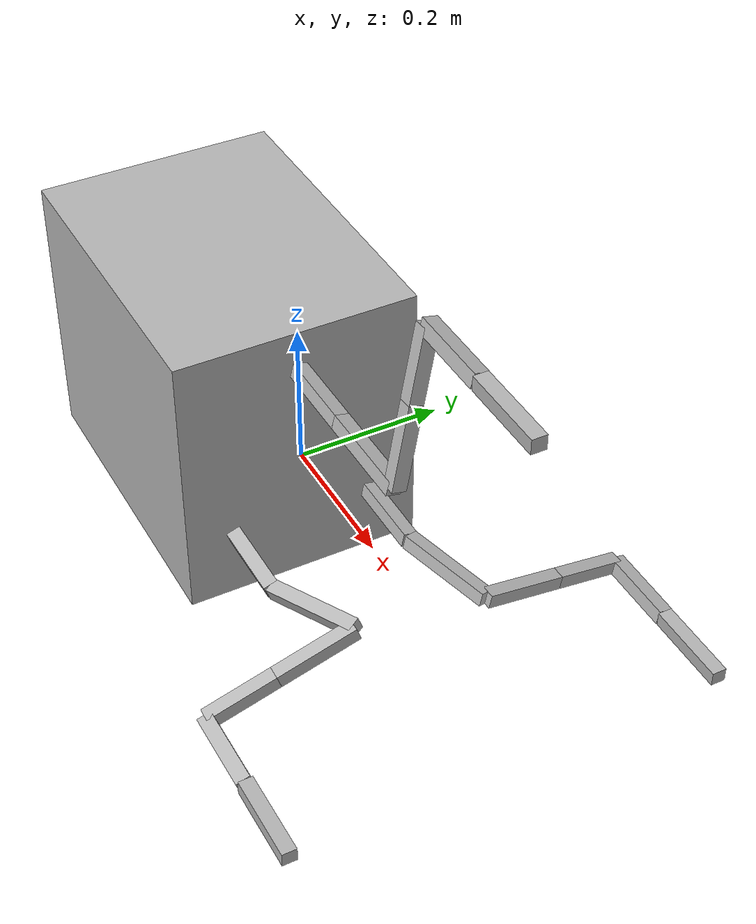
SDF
<?xml version="1.0" ?>
<sdf version="1.5">
<model name="four_bar_sdf">
<pose>0 0 0 0 0 0</pose>
<self_collide>true</self_collide>
<link name="linkROV">
<pose>-0.2286 0 0 0 0 0</pose>
<inertial>
<mass>1.0</mass>
<inertia>
<ixx>0.0227</ixx>
<iyy>0.0306</iyy>
<izz>0.0269</izz>
<ixy>0.0</ixy>
<ixz>0.0</ixz>
<iyz>0.0</iyz>
</inertia>
</inertial>
<collision name="linkROV_collision">
<geometry>
<box>
<size>0.4572 0.33805 0.39785</size>
</box>
</geometry>
</collision>
<visual name="linkROV_visual">
<geometry>
<box>
<size>0.4572 0.33805 0.39785</size>
</box>
</geometry>
<material>
<color rgba="0.3 0.3 0.3 1.0"/>
</material>
</visual>
</link>
<link name="arm1link1">
<pose>0.05750000 0.10000000 -0.10000000 -0.19710048 -0.00000000 0.00000000 </pose>
<inertial>
<mass>0.575</mass>
<inertia>
<ixx>3.8333e-05</ixx>
<iyy>6.5286e-04</iyy>
<izz>6.5286e-04</izz>
<ixy>0.0</ixy>
<ixz>0.0</ixz>
<iyz>0.0</iyz>
</inertia>
</inertial>
<collision name="arm1link1_collision">
<geometry>
<box>
<size>0.115 0.02 0.02</size>
</box>
</geometry>
</collision>
<visual name="arm1link1_visual">
<geometry>
<box>
<size>0.115 0.02 0.02</size>
</box>
</geometry>
<material>
<color rgba="0.3 0.3 0.3 1.0"/>
</material>
</visual>
</link>
<link name="arm1link2">
<pose>0.18208900 0.11958986 -0.10391196 -0.18910197 0.05591430 0.28409960 </pose>
<inertial>
<mass>0.700</mass>
<inertia>
<ixx>4.6667e-05</ixx>
<iyy>1.1667e-03</iyy>
<izz>1.1667e-03</izz>
<ixy>0.0</ixy>
<ixz>0.0</ixz>
<iyz>0.0</iyz>
</inertia>
</inertial>
<collision name="arm1link2_collision">
<geometry>
<box>
<size>0.140 0.02 0.02</size>
</box>
</geometry>
</collision>
<visual name="arm1link2_visual">
<geometry>
<box>
<size>0.140 0.02 0.02</size>
</box>
</geometry>
<material>
<color rgba="0.3 0.3 0.3 1.0"/>
</material>
</visual>
</link>
<link name="arm1link3">
<pose>0.24573851 0.19546547 -0.11906380 0.01194450 0.19674291 1.63182800 </pose>
<inertial>
<mass>0.575</mass>
<inertia>
<ixx>3.8333e-05</ixx>
<iyy>6.5286e-04</iyy>
<izz>6.5286e-04</izz>
<ixy>0.0</ixy>
<ixz>0.0</ixz>
<iyz>0.0</iyz>
</inertia>
</inertial>
<collision name="arm1link3_collision">
<geometry>
<box>
<size>0.115 0.02 0.02</size>
</box>
</geometry>
</collision>
<visual name="arm1link3_visual">
<geometry>
<box>
<size>0.115 0.02 0.02</size>
</box>
</geometry>
<material>
<color rgba="0.3 0.3 0.3 1.0"/>
</material>
</visual>
</link>
<link name="arm1link4">
<pose>0.23930817 0.30069535 -0.14007748 0.01247686 0.19674291 1.63182800 </pose>
<inertial>
<mass>0.500</mass>
<inertia>
<ixx>3.3333e-05</ixx>
<iyy>4.3333e-04</iyy>
<izz>4.3333e-04</izz>
<ixy>0.0</ixy>
<ixz>0.0</ixz>
<iyz>0.0</iyz>
</inertia>
</inertial>
<collision name="arm1link4_collision">
<geometry>
<box>
<size>0.100 0.02 0.02</size>
</box>
</geometry>
</collision>
<visual name="arm1link4_visual">
<geometry>
<box>
<size>0.100 0.02 0.02</size>
</box>
</geometry>
<material>
<color rgba="0.3 0.3 0.3 1.0"/>
</material>
</visual>
</link>
<link name="arm1link5">
<pose>0.29381730 0.34965661 -0.14988587 -0.19713213 0.00060144 0.00029808 </pose>
<inertial>
<mass>0.575</mass>
<inertia>
<ixx>3.8333e-05</ixx>
<iyy>6.5286e-04</iyy>
<izz>6.5286e-04</izz>
<ixy>0.0</ixy>
<ixz>0.0</ixz>
<iyz>0.0</iyz>
</inertia>
</inertial>
<collision name="arm1link5_collision">
<geometry>
<box>
<size>0.115 0.02 0.02</size>
</box>
</geometry>
</collision>
<visual name="arm1link5_visual">
<geometry>
<box>
<size>0.115 0.02 0.02</size>
</box>
</geometry>
<material>
<color rgba="0.3 0.3 0.3 1.0"/>
</material>
</visual>
</link>
<link name="arm1link6">
<pose>0.41131727 0.34969164 -0.14995654 -0.00027824 0.00060144 0.00029808 </pose>
<inertial>
<mass>0.600</mass>
<inertia>
<ixx>4.0000e-05</ixx>
<iyy>7.4000e-04</iyy>
<izz>7.4000e-04</izz>
<ixy>0.0</ixy>
<ixz>0.0</ixz>
<iyz>0.0</iyz>
</inertia>
</inertial>
<collision name="arm1link6_collision">
<geometry>
<box>
<size>0.120 0.02 0.02</size>
</box>
</geometry>
</collision>
<visual name="arm1link6_visual">
<geometry>
<box>
<size>0.120 0.02 0.02</size>
</box>
</geometry>
<material>
<color rgba="0.3 0.3 0.3 1.0"/>
</material>
</visual>
</link>
<link name="arm2link1">
<pose>0.05750000 -0.10000000 -0.10000000 -2.81770000 0.00000000 0.00000000 </pose>
<inertial>
<mass>0.575</mass>
<inertia>
<ixx>3.8333e-05</ixx>
<iyy>6.5286e-04</iyy>
<izz>6.5286e-04</izz>
<ixy>0.0</ixy>
<ixz>0.0</ixz>
<iyz>0.0</iyz>
</inertia>
</inertial>
<collision name="arm2link1_collision">
<geometry>
<box>
<size>0.115 0.02 0.02</size>
</box>
</geometry>
</collision>
<visual name="arm2link1_visual">
<geometry>
<box>
<size>0.115 0.02 0.02</size>
</box>
</geometry>
<material>
<color rgba="0.3 0.3 0.3 1.0"/>
</material>
</visual>
</link>
<link name="arm2link2">
<pose>0.17897000 -0.07305400 -0.09095500 -2.84400000 -0.12958000 0.39868000 </pose>
<inertial>
<mass>0.700</mass>
<inertia>
<ixx>4.6667e-05</ixx>
<iyy>1.1667e-03</iyy>
<izz>1.1667e-03</izz>
<ixy>0.0</ixy>
<ixz>0.0</ixz>
<iyz>0.0</iyz>
</inertia>
</inertial>
<collision name="arm2link2_collision">
<geometry>
<box>
<size>0.140 0.02 0.02</size>
</box>
</geometry>
</collision>
<visual name="arm2link2_visual">
<geometry>
<box>
<size>0.140 0.02 0.02</size>
</box>
</geometry>
<material>
<color rgba="0.3 0.3 0.3 1.0"/>
</material>
</visual>
</link>
<link name="arm2link3">
<pose>0.24104000 -0.10059000 -0.10020000 3.13050000 0.32367000 -1.60560000 </pose>
<inertial>
<mass>0.575</mass>
<inertia>
<ixx>3.8333e-05</ixx>
<iyy>6.5286e-04</iyy>
<izz>6.5286e-04</izz>
<ixy>0.0</ixy>
<ixz>0.0</ixz>
<iyz>0.0</iyz>
</inertia>
</inertial>
<collision name="arm2link3_collision">
<geometry>
<box>
<size>0.115 0.02 0.02</size>
</box>
</geometry>
</collision>
<visual name="arm2link3_visual">
<geometry>
<box>
<size>0.115 0.02 0.02</size>
</box>
</geometry>
<material>
<color rgba="0.3 0.3 0.3 1.0"/>
</material>
</visual>
</link>
<link name="arm2link4">
<pose>0.23749000 -0.20244000 -0.13439000 3.13060000 0.32367000 -1.60560000 </pose>
<inertial>
<mass>0.500</mass>
<inertia>
<ixx>3.3333e-05</ixx>
<iyy>4.3333e-04</iyy>
<izz>4.3333e-04</izz>
<ixy>0.0</ixy>
<ixz>0.0</ixz>
<iyz>0.0</iyz>
</inertia>
</inertial>
<collision name="arm2link4_collision">
<geometry>
<box>
<size>0.100 0.02 0.02</size>
</box>
</geometry>
</collision>
<visual name="arm2link4_visual">
<geometry>
<box>
<size>0.100 0.02 0.02</size>
</box>
</geometry>
<material>
<color rgba="0.3 0.3 0.3 1.0"/>
</material>
</visual>
</link>
<link name="arm2link5">
<pose>0.29334000 -0.24980000 -0.15028000 -2.81770000 -0.00023771 0.00028540 </pose>
<inertial>
<mass>0.575</mass>
<inertia>
<ixx>3.8333e-05</ixx>
<iyy>6.5286e-04</iyy>
<izz>6.5286e-04</izz>
<ixy>0.0</ixy>
<ixz>0.0</ixz>
<iyz>0.0</iyz>
</inertia>
</inertial>
<collision name="arm2link5_collision">
<geometry>
<box>
<size>0.115 0.02 0.02</size>
</box>
</geometry>
</collision>
<visual name="arm2link5_visual">
<geometry>
<box>
<size>0.115 0.02 0.02</size>
</box>
</geometry>
<material>
<color rgba="0.3 0.3 0.3 1.0"/>
</material>
</visual>
</link>
<link name="arm2link6">
<pose>0.41084000 -0.24977000 -0.15025000 0.00010161 -0.00023771 0.00028540 </pose>
<inertial>
<mass>0.600</mass>
<inertia>
<ixx>4.0000e-05</ixx>
<iyy>7.4000e-04</iyy>
<izz>7.4000e-04</izz>
<ixy>0.0</ixy>
<ixz>0.0</ixz>
<iyz>0.0</iyz>
</inertia>
</inertial>
<collision name="arm2link6_collision">
<geometry>
<box>
<size>0.120 0.02 0.02</size>
</box>
</geometry>
</collision>
<visual name="arm2link6_visual">
<geometry>
<box>
<size>0.120 0.02 0.02</size>
</box>
</geometry>
<material>
<color rgba="0.3 0.3 0.3 1.0"/>
</material>
</visual>
</link>
<link name="arm3link1">
<pose>0.05750000 0.00000000 0.14142000 1.33530000 0.00000000 0.00000000 </pose>
<inertial>
<mass>0.575</mass>
<inertia>
<ixx>3.8333e-05</ixx>
<iyy>6.5286e-04</iyy>
<izz>6.5286e-04</izz>
<ixy>0.0</ixy>
<ixz>0.0</ixz>
<iyz>0.0</iyz>
</inertia>
</inertial>
<collision name="arm3link1_collision">
<geometry>
<box>
<size>0.115 0.02 0.02</size>
</box>
</geometry>
</collision>
<visual name="arm3link1_visual">
<geometry>
<box>
<size>0.115 0.02 0.02</size>
</box>
</geometry>
<material>
<color rgba="0.3 0.3 0.3 1.0"/>
</material>
</visual>
</link>
<link name="arm3link2">
<pose>0.18500000 0.00008969 0.14180000 1.33530000 -0.00534030 0.00128130 </pose>
<inertial>
<mass>0.700</mass>
<inertia>
<ixx>4.6667e-05</ixx>
<iyy>1.1667e-03</iyy>
<izz>1.1667e-03</izz>
<ixy>0.0</ixy>
<ixz>0.0</ixz>
<iyz>0.0</iyz>
</inertia>
</inertial>
<collision name="arm3link2_collision">
<geometry>
<box>
<size>0.140 0.02 0.02</size>
</box>
</geometry>
</collision>
<visual name="arm3link2_visual">
<geometry>
<box>
<size>0.140 0.02 0.02</size>
</box>
</geometry>
<material>
<color rgba="0.3 0.3 0.3 1.0"/>
</material>
</visual>
</link>
<link name="arm3link3">
<pose>0.24979000 0.01354000 0.19785000 -0.36071000 -1.31880000 1.94220000 </pose>
<inertial>
<mass>0.575</mass>
<inertia>
<ixx>3.8333e-05</ixx>
<iyy>6.5286e-04</iyy>
<izz>6.5286e-04</izz>
<ixy>0.0</ixy>
<ixz>0.0</ixz>
<iyz>0.0</iyz>
</inertia>
</inertial>
<collision name="arm3link3_collision">
<geometry>
<box>
<size>0.115 0.02 0.02</size>
</box>
</geometry>
</collision>
<visual name="arm3link3_visual">
<geometry>
<box>
<size>0.115 0.02 0.02</size>
</box>
</geometry>
<material>
<color rgba="0.3 0.3 0.3 1.0"/>
</material>
</visual>
</link>
<link name="arm3link4">
<pose>0.24006000 0.03851800 0.30196000 -0.36070000 -1.31880000 1.94220000 </pose>
<inertial>
<mass>0.500</mass>
<inertia>
<ixx>3.3333e-05</ixx>
<iyy>4.3333e-04</iyy>
<izz>4.3333e-04</izz>
<ixy>0.0</ixy>
<ixz>0.0</ixz>
<iyz>0.0</iyz>
</inertia>
</inertial>
<collision name="arm3link4_collision">
<geometry>
<box>
<size>0.100 0.02 0.02</size>
</box>
</geometry>
</collision>
<visual name="arm3link4_visual">
<geometry>
<box>
<size>0.100 0.02 0.02</size>
</box>
</geometry>
<material>
<color rgba="0.3 0.3 0.3 1.0"/>
</material>
</visual>
</link>
<link name="arm3link5">
<pose>0.29304000 0.05013700 0.35038000 1.33530000 -0.00007086 0.00002200 </pose>
<inertial>
<mass>0.575</mass>
<inertia>
<ixx>3.8333e-05</ixx>
<iyy>6.5286e-04</iyy>
<izz>6.5286e-04</izz>
<ixy>0.0</ixy>
<ixz>0.0</ixz>
<iyz>0.0</iyz>
</inertia>
</inertial>
<collision name="arm3link5_collision">
<geometry>
<box>
<size>0.115 0.02 0.02</size>
</box>
</geometry>
</collision>
<visual name="arm3link5_visual">
<geometry>
<box>
<size>0.115 0.02 0.02</size>
</box>
</geometry>
<material>
<color rgba="0.3 0.3 0.3 1.0"/>
</material>
</visual>
</link>
<link name="arm3link6">
<pose>0.41054000 0.05013900 0.35039000 0.00003068 -0.00007086 0.00002200 </pose>
<inertial>
<mass>0.600</mass>
<inertia>
<ixx>4.0000e-05</ixx>
<iyy>7.4000e-04</iyy>
<izz>7.4000e-04</izz>
<ixy>0.0</ixy>
<ixz>0.0</ixz>
<iyz>0.0</iyz>
</inertia>
</inertial>
<collision name="arm3link6_collision">
<geometry>
<box>
<size>0.120 0.02 0.02</size>
</box>
</geometry>
</collision>
<visual name="arm3link6_visual">
<geometry>
<box>
<size>0.120 0.02 0.02</size>
</box>
</geometry>
<material>
<color rgba="0.3 0.3 0.3 1.0"/>
</material>
</visual>
</link>
<joint name="arm1_jointgrip" type="fixed">
<pose>0 0 0 0 0 0</pose>
<parent>world</parent>
<child>arm1link6</child>
</joint>
<joint name="arm1_joint1" type="revolute">
<pose>0 0 0 0 0 0</pose>
<parent>linkROV</parent>
<child>arm1link1</child>
<axis>
<xyz>1 0 0</xyz>
<dynamics>
<damping>0.05</damping>
<friction>0</friction>
<spring_reference>0</spring_reference>
<spring_stiffness>10.0</spring_stiffness>
</dynamics>
</axis>
</joint>
<joint name="arm1_joint2" type="revolute">
<pose>-0.07 0 0 0 0 0</pose>
<parent>arm1link1</parent>
<child>arm1link2</child>
<axis>
<xyz>0 0 1</xyz>
<dynamics>
<damping>0.05</damping>
<friction>0</friction>
<spring_reference>0</spring_reference>
<spring_stiffness>10.0</spring_stiffness>
</dynamics>
</axis>
</joint>
<joint name="arm1_joint3" type="revolute">
<pose>-0.0575 0 0 0 0 0</pose>
<parent>arm1link2</parent>
<child>arm1link3</child>
<axis>
<xyz>0 0 1</xyz>
<dynamics>
<damping>0.05</damping>
<friction>0</friction>
<spring_reference>0</spring_reference>
<spring_stiffness>10.0</spring_stiffness>
</dynamics>
</axis>
</joint>
<joint name="arm1_joint4" type="revolute">
<pose>-0.05 0 0 0 0 0</pose>
<parent>arm1link3</parent>
<child>arm1link4</child>
<axis>
<xyz>1 0 0</xyz>
<dynamics>
<damping>0.05</damping>
<friction>0</friction>
<spring_reference>0</spring_reference>
<spring_stiffness>10.0</spring_stiffness>
</dynamics>
</axis>
</joint>
<joint name="arm1_joint5" type="revolute">
<pose>-0.0575 0 0 0 0 0</pose>
<parent>arm1link4</parent>
<child>arm1link5</child>
<axis>
<xyz>0 0 1</xyz>
<dynamics>
<damping>0.05</damping>
<friction>0</friction>
<spring_reference>0</spring_reference>
<spring_stiffness>10.0</spring_stiffness>
</dynamics>
</axis>
</joint>
<joint name="arm1_joint6" type="revolute">
<pose>-0.06 0 0 0 0 0</pose>
<parent>arm1link5</parent>
<child>arm1link6</child>
<axis>
<xyz>1 0 0</xyz>
<dynamics>
<damping>0.05</damping>
<friction>0</friction>
<spring_reference>0</spring_reference>
<spring_stiffness>10.0</spring_stiffness>
</dynamics>
</axis>
</joint>
<joint name="arm2_jointgrip" type="fixed">
<pose>0 0 0 0 0 0</pose>
<parent>world</parent>
<child>arm2link6</child>
</joint>
<joint name="arm2_joint1" type="revolute">
<pose>0 0 0 0 0 0</pose>
<parent>linkROV</parent>
<child>arm2link1</child>
<axis>
<xyz>1 0 0</xyz>
<dynamics>
<damping>0.05</damping>
<friction>0</friction>
<spring_reference>0</spring_reference>
<spring_stiffness>10.0</spring_stiffness>
</dynamics>
</axis>
</joint>
<joint name="arm2_joint2" type="revolute">
<pose>-0.07 0 0 0 0 0</pose>
<parent>arm2link1</parent>
<child>arm2link2</child>
<axis>
<xyz>0 0 1</xyz>
<dynamics>
<damping>0.05</damping>
<friction>0</friction>
<spring_reference>0</spring_reference>
<spring_stiffness>10.0</spring_stiffness>
</dynamics>
</axis>
</joint>
<joint name="arm2_joint3" type="revolute">
<pose>-0.0575 0 0 0 0 0</pose>
<parent>arm2link2</parent>
<child>arm2link3</child>
<axis>
<xyz>0 0 1</xyz>
<dynamics>
<damping>0.05</damping>
<friction>0</friction>
<spring_reference>0</spring_reference>
<spring_stiffness>10.0</spring_stiffness>
</dynamics>
</axis>
</joint>
<joint name="arm2_joint4" type="revolute">
<pose>-0.05 0 0 0 0 0</pose>
<parent>arm2link3</parent>
<child>arm2link4</child>
<axis>
<xyz>1 0 0</xyz>
<dynamics>
<damping>0.05</damping>
<friction>0</friction>
<spring_reference>0</spring_reference>
<spring_stiffness>10.0</spring_stiffness>
</dynamics>
</axis>
</joint>
<joint name="arm2_joint5" type="revolute">
<pose>-0.0575 0 0 0 0 0</pose>
<parent>arm2link4</parent>
<child>arm2link5</child>
<axis>
<xyz>0 0 1</xyz>
<dynamics>
<damping>0.05</damping>
<friction>0</friction>
<spring_reference>0</spring_reference>
<spring_stiffness>10.0</spring_stiffness>
</dynamics>
</axis>
</joint>
<joint name="arm2_joint6" type="revolute">
<pose>-0.06 0 0 0 0 0</pose>
<parent>arm2link5</parent>
<child>arm2link6</child>
<axis>
<xyz>1 0 0</xyz>
<dynamics>
<damping>0.05</damping>
<friction>0</friction>
<spring_reference>0</spring_reference>
<spring_stiffness>10.0</spring_stiffness>
</dynamics>
</axis>
</joint>
<joint name="arm3_jointgrip" type="fixed">
<pose>0 0 0 0 0 0</pose>
<parent>world</parent>
<child>arm3link6</child>
</joint>
<joint name="arm3_joint1" type="revolute">
<pose>0 0 0 0 0 0</pose>
<parent>linkROV</parent>
<child>arm3link1</child>
<axis>
<xyz>1 0 0</xyz>
<dynamics>
<damping>0.05</damping>
<friction>0</friction>
<spring_reference>0</spring_reference>
<spring_stiffness>10.0</spring_stiffness>
</dynamics>
</axis>
</joint>
<joint name="arm3_joint2" type="revolute">
<pose>-0.07 0 0 0 0 0</pose>
<parent>arm3link1</parent>
<child>arm3link2</child>
<axis>
<xyz>0 0 1</xyz>
<dynamics>
<damping>0.05</damping>
<friction>0</friction>
<spring_reference>0</spring_reference>
<spring_stiffness>10.0</spring_stiffness>
</dynamics>
</axis>
</joint>
<joint name="arm3_joint3" type="revolute">
<pose>-0.0575 0 0 0 0 0</pose>
<parent>arm3link2</parent>
<child>arm3link3</child>
<axis>
<xyz>0 0 1</xyz>
<dynamics>
<damping>0.05</damping>
<friction>0</friction>
<spring_reference>0</spring_reference>
<spring_stiffness>10.0</spring_stiffness>
</dynamics>
</axis>
</joint>
<joint name="arm3_joint4" type="revolute">
<pose>-0.05 0 0 0 0 0</pose>
<parent>arm3link3</parent>
<child>arm3link4</child>
<axis>
<xyz>1 0 0</xyz>
<dynamics>
<damping>0.05</damping>
<friction>0</friction>
<spring_reference>0</spring_reference>
<spring_stiffness>10.0</spring_stiffness>
</dynamics>
</axis>
</joint>
<joint name="arm3_joint5" type="revolute">
<pose>-0.0575 0 0 0 0 0</pose>
<parent>arm3link4</parent>
<child>arm3link5</child>
<axis>
<xyz>0 0 1</xyz>
<dynamics>
<damping>0.05</damping>
<friction>0</friction>
<spring_reference>0</spring_reference>
<spring_stiffness>10.0</spring_stiffness>
</dynamics>
</axis>
</joint>
<joint name="arm3_joint6" type="revolute">
<pose>-0.06 0 0 0 0 0</pose>
<parent>arm3link5</parent>
<child>arm3link6</child>
<axis>
<xyz>1 0 0</xyz>
<dynamics>
<damping>0.05</damping>
<friction>0</friction>
<spring_reference>0</spring_reference>
<spring_stiffness>10.0</spring_stiffness>
</dynamics>
</axis>
</joint>
</model>
</sdf>
